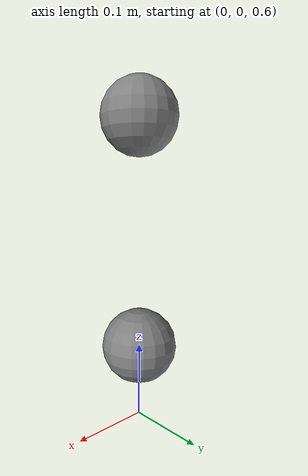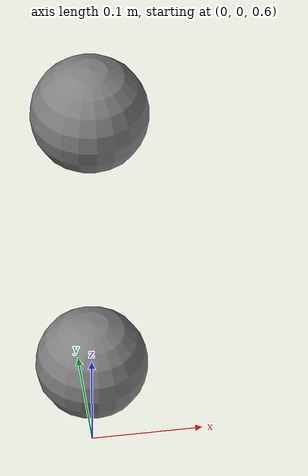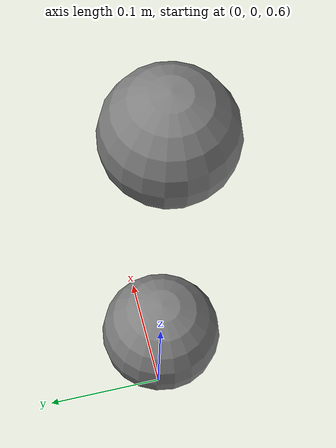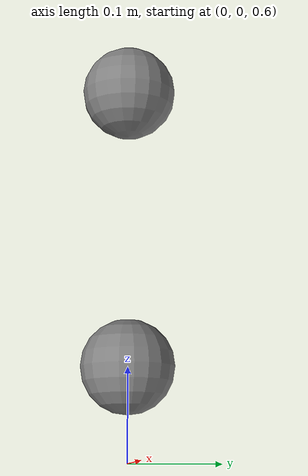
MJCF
<mujoco model="connect_error">
            <option gravity="0 0 -9.81" timestep="0.001" solver="Newton" cone="elliptic"/>
            <worldbody>
                <body name="b1" pos="0 0 1">
                    <joint type="free"/>
                    <geom type="sphere" size="0.05" mass="1.0"/>
                </body>
                <body name="b2" pos="0 0 0.7">
                    <joint type="free"/>
                    <geom type="sphere" size="0.05" mass="1.0"/>
                </body>
                <geom type="plane" size="5 5 0.1"/>
            </worldbody>
            <equality>
                <connect body1="b1" body2="b2" anchor="0 0 -0.15"/>
            </equality>
        </mujoco>
